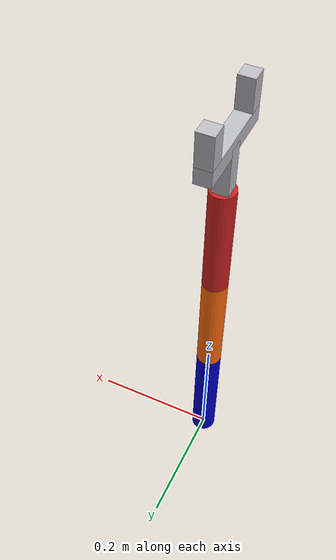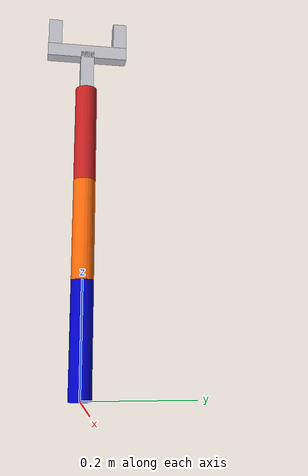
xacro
<?xml version="1.0" ?>
<robot name="iai_student_robot" xmlns:xacro="http://www.ros.org/wiki/xacro">
    <material name="black">
        <color rgba="0.0 0.0 0.0 1.0"/>
    </material>
    <material name="blue">
        <color rgba="0 0 0.8 1"/>
    </material>
    <material name="green">
        <color rgba="0.0 0.8 0.0 1.0"/>
    </material>
    <material name="grey">
        <color rgba="0.2 0.2 0.2 1.0"/>
    </material>
    <material name="orange">
        <color rgba="1.0 0.423529411765 0.0392156862745 1.0"/>
    </material>
    <material name="brown">
        <color rgba="0.870588235294 0.811764705882 0.764705882353 1.0"/>
    </material>
    <material name="red">
        <color rgba="0.80078125 0.12890625 0.1328125 1.0"/>
    </material>
    <material name="white">
        <color rgba="1.0 1.0 1.0 1.0"/>
    </material>

    <xacro:property name="wheel_radius" value="0.08"/>
    <xacro:property name="pi" value="3.14"/>
    <xacro:property name="chassis_box_height" value="0.07"/>
    <xacro:property name="arm_cylinder_length" value="0.18"/>

    <link name="base_link">

    </link>

    <link name="torso_link">
        <visual>
            <geometry>
                <cylinder length="0.2" radius="0.02"/>
            </geometry>
            <material name="blue"/>
            <origin rpy="0 0 0" xyz="0.0 0.0 0.1"/>
        </visual>
    </link>

    <joint name="torso_joint" type="continuous">
        <axis xyz="0 0 1"/>
        <parent link="base_link"/>
        <child link="torso_link"/>
        <origin rpy="0 0 0" xyz="0.0 0.0 0"/>
    </joint>

    <link name="upper_arm_link">
        <visual>
            <geometry>
                <cylinder length="0.18" radius="0.02"/>
            </geometry>
            <material name="orange"/>
            <origin rpy="0 0 0" xyz="0.0 0.0 0.09"/>
        </visual>
    </link>

    <joint name="upper_arm_joint" type="revolute">
        <axis xyz="1 0 0"/>
        <parent link="torso_link"/>
        <child link="upper_arm_link"/>
        <origin rpy="0 0 0" xyz="0.0 0.0 0.2"/>
        <limit effort="1000.0" lower="-1.57" upper="1.57" velocity="0.5"/>
    </joint>

    <link name="lower_arm_link">
        <visual>
            <geometry>
                <cylinder length="0.18" radius="0.02"/>
            </geometry>
            <material name="red"/>
            <origin rpy="0 0 0" xyz="0.0 0.0 0.09"/>
        </visual>
    </link>

    <joint name="lower_arm_joint" type="revolute">
        <axis xyz="1 1 0"/>
        <parent link="upper_arm_link"/>
        <child link="lower_arm_link"/>
        <origin rpy="0 0 0" xyz="0.0 0.0 0.18"/>
        <limit effort="1000.0" lower="-1.57" upper="1.57" velocity="0.5"/>
    </joint>

    <link name="gripper_base_link">
        <visual>
            <geometry>
                <box size="0.025 0.025 0.075"/>
            </geometry>
            <material name="silver"/>
        </visual>
    </link>

    <joint name="gripper_wrist" type="continuous">
        <axis xyz="0 0 1"/>
        <parent link="lower_arm_link"/>
        <child link="gripper_base_link"/>
        <origin rpy="0 0 0" xyz="0.0 0.0 0.2175"/>
    </joint>

    <link name="gripper_horizontal_link">
        <visual>
            <geometry>
                <box size="0.025 0.15 0.025"/>
            </geometry>
            <material name="silver"/>
        </visual>
    </link>

    <joint name="gripper_horizontal_joint" type="fixed">
        <parent link="gripper_base_link"/>
        <child link="gripper_horizontal_link"/>
        <origin rpy="0 0 0" xyz="0.0 0.0 0.0375"/>
    </joint>

    <link name="gripper_hand_left_link">
        <visual>
            <geometry>
                <box size="0.025 0.025 0.05"/>
            </geometry>
            <material name="silver"/>
        </visual>
    </link>

    <joint name="gripper_hand_left_joint" type="prismatic">
        <parent link="gripper_horizontal_link"/>
        <child link="gripper_hand_left_link"/>
        <limit effort="1000.0" lower="-0.05" upper="0" velocity="0.5"/>
        <axis xyz="0 -1 0"/>
        <origin rpy="0 0 0" xyz="0.0 -0.062 0.0375"/>
    </joint>

    <link name="gripper_hand_right_link">
        <visual>
            <geometry>
                <box size="0.025 0.025 0.05"/>
            </geometry>
            <material name="silver"/>
        </visual>
    </link>

    <joint name="gripper_hand_right_joint" type="prismatic">
        <parent link="gripper_horizontal_link"/>
        <child link="gripper_hand_right_link"/>
        <limit effort="1000.0" lower="-0.05" upper="0.0" velocity="0.5"/>
        <axis xyz="0 1 0"/>
        <origin rpy="0 0 0" xyz="0.0 0.062 0.0375"/>
    </joint>
</robot>
